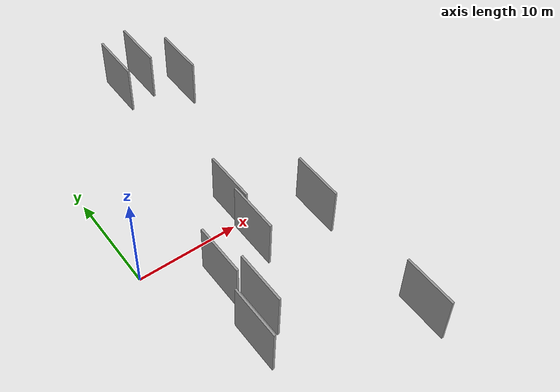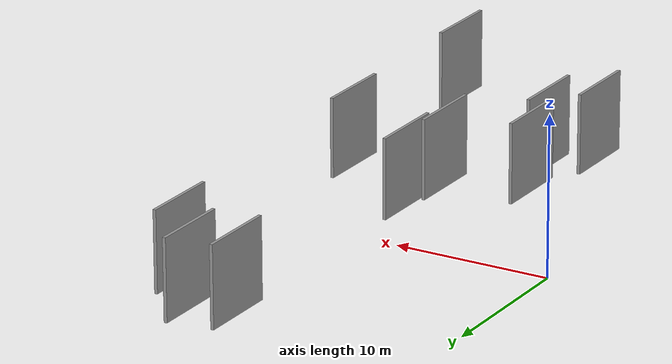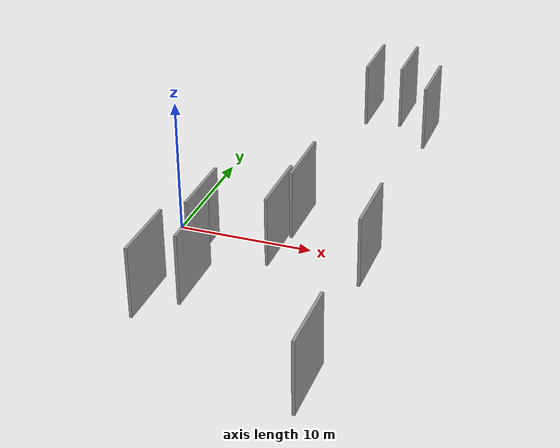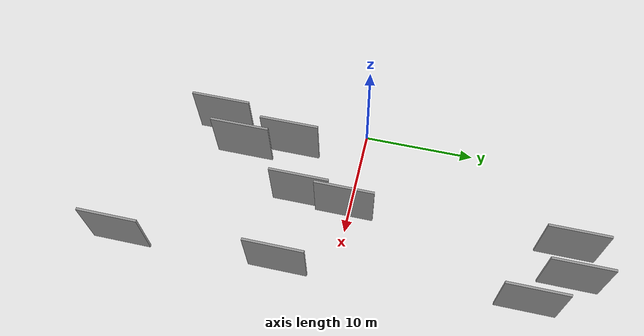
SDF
<sdf version="1.6">
 <world name="default">
  <scene>
   <sky><clouds><speed>12</speed></clouds></sky>
   <ambient>0.4 0.4 0.4 1</ambient>
   <background>0.7 0.7 0.7 1</background>
   <shadows>1</shadows>
  </scene>
  <gravity>0 0 -9.8066</gravity>
  <magnetic_field>6e-06 2.3e-05 -4.2e-05</magnetic_field>
  <physics default="0" name="default_physics" type="ode">
   <ode>
    <solver>
     <type>quick</type>
     <iters>10</iters>
     <sor>1.0</sor>
     <use_dynamic_moi_rescaling>0</use_dynamic_moi_rescaling>
    </solver>
    <constraints>
     <cfm>0</cfm>
     <erp>0.2</erp>
     <contact_max_correcting_vel>100</contact_max_correcting_vel>
     <contact_surface_layer>0.001</contact_surface_layer>
    </constraints>
   </ode>
   <max_step_size>0.004</max_step_size>
   <real_time_factor>1</real_time_factor>
   <real_time_update_rate>250</real_time_update_rate>
  </physics>
  <light name="sun" type="directional">
   <pose>0 0 10 0 0 0</pose>
   <diffuse>0.8 0.8 0.8 1</diffuse>
   <specular>0.2 0.2 0.2 1</specular>
   <attenuation>
    <range>1000</range>
    <constant>0.9</constant>
    <linear>0.01</linear>
    <quadratic>0.001</quadratic>
   </attenuation>
   <direction>-0.5 0.1 -0.9</direction>
  </light>
  <model name="grey_wall_1">
   <static>1</static>
   <pose>14.6892 15.8349 2.5 0.000000 0.000000 1.570796</pose>
   <link name="link">
    <pose>0 0 2.50 0 0 0</pose>
    <collision name="collision"><geometry><box><size>5.00 0.2 5.00</size></box></geometry></collision>
    <visual name="visual">
     <cast_shadows>0</cast_shadows>
     <geometry><box><size>5.00 0.2 5.00</size></box></geometry>
     <material>
      <script>
       <uri>model://grey_wall/materials/scripts</uri>
       <uri>model://grey_wall/materials/textures</uri>
       <name>vrc/grey_wall</name>
      </script>
     </material>
    </visual>
   </link>
  </model>
  <model name="grey_wall_2">
   <static>1</static>
   <pose>9.1264 -4.0138 2.5 0.000000 0.000000 1.570796</pose>
   <link name="link">
    <pose>0 0 2.50 0 0 0</pose>
    <collision name="collision"><geometry><box><size>5.00 0.2 5.00</size></box></geometry></collision>
    <visual name="visual">
     <cast_shadows>0</cast_shadows>
     <geometry><box><size>5.00 0.2 5.00</size></box></geometry>
     <material>
      <script>
       <uri>model://grey_wall/materials/scripts</uri>
       <uri>model://grey_wall/materials/textures</uri>
       <name>vrc/grey_wall</name>
      </script>
     </material>
    </visual>
   </link>
  </model>
  <model name="grey_wall_3">
   <static>1</static>
   <pose>9.2573 18.5756 2.5 0.000000 0.000000 1.570796</pose>
   <link name="link">
    <pose>0 0 2.50 0 0 0</pose>
    <collision name="collision"><geometry><box><size>5.00 0.2 5.00</size></box></geometry></collision>
    <visual name="visual">
     <cast_shadows>0</cast_shadows>
     <geometry><box><size>5.00 0.2 5.00</size></box></geometry>
     <material>
      <script>
       <uri>model://grey_wall/materials/scripts</uri>
       <uri>model://grey_wall/materials/textures</uri>
       <name>vrc/grey_wall</name>
      </script>
     </material>
    </visual>
   </link>
  </model>
  <model name="grey_wall_4">
   <static>1</static>
   <pose>9.4729 -0.1603 2.5 0.000000 0.000000 1.570796</pose>
   <link name="link">
    <pose>0 0 2.50 0 0 0</pose>
    <collision name="collision"><geometry><box><size>5.00 0.2 5.00</size></box></geometry></collision>
    <visual name="visual">
     <cast_shadows>0</cast_shadows>
     <geometry><box><size>5.00 0.2 5.00</size></box></geometry>
     <material>
      <script>
       <uri>model://grey_wall/materials/scripts</uri>
       <uri>model://grey_wall/materials/textures</uri>
       <name>vrc/grey_wall</name>
      </script>
     </material>
    </visual>
   </link>
  </model>
  <model name="grey_wall_5">
   <static>1</static>
   <pose>3.3016 -12.3086 2.5 0.000000 0.000000 1.570796</pose>
   <link name="link">
    <pose>0 0 2.50 0 0 0</pose>
    <collision name="collision"><geometry><box><size>5.00 0.2 5.00</size></box></geometry></collision>
    <visual name="visual">
     <cast_shadows>0</cast_shadows>
     <geometry><box><size>5.00 0.2 5.00</size></box></geometry>
     <material>
      <script>
       <uri>model://grey_wall/materials/scripts</uri>
       <uri>model://grey_wall/materials/textures</uri>
       <name>vrc/grey_wall</name>
      </script>
     </material>
    </visual>
   </link>
  </model>
  <model name="grey_wall_6">
   <static>1</static>
   <pose>15.5739 -4.4283 2.5 0.000000 0.000000 1.570796</pose>
   <link name="link">
    <pose>0 0 2.50 0 0 0</pose>
    <collision name="collision"><geometry><box><size>5.00 0.2 5.00</size></box></geometry></collision>
    <visual name="visual">
     <cast_shadows>0</cast_shadows>
     <geometry><box><size>5.00 0.2 5.00</size></box></geometry>
     <material>
      <script>
       <uri>model://grey_wall/materials/scripts</uri>
       <uri>model://grey_wall/materials/textures</uri>
       <name>vrc/grey_wall</name>
      </script>
     </material>
    </visual>
   </link>
  </model>
  <model name="grey_wall_7">
   <static>1</static>
   <pose>4.4286 -6.0121 2.5 0.000000 0.000000 1.570796</pose>
   <link name="link">
    <pose>0 0 2.50 0 0 0</pose>
    <collision name="collision"><geometry><box><size>5.00 0.2 5.00</size></box></geometry></collision>
    <visual name="visual">
     <cast_shadows>0</cast_shadows>
     <geometry><box><size>5.00 0.2 5.00</size></box></geometry>
     <material>
      <script>
       <uri>model://grey_wall/materials/scripts</uri>
       <uri>model://grey_wall/materials/textures</uri>
       <name>vrc/grey_wall</name>
      </script>
     </material>
    </visual>
   </link>
  </model>
  <model name="grey_wall_8">
   <static>1</static>
   <pose>5.4996 -10.0364 2.5 0.000000 0.000000 1.570796</pose>
   <link name="link">
    <pose>0 0 2.50 0 0 0</pose>
    <collision name="collision"><geometry><box><size>5.00 0.2 5.00</size></box></geometry></collision>
    <visual name="visual">
     <cast_shadows>0</cast_shadows>
     <geometry><box><size>5.00 0.2 5.00</size></box></geometry>
     <material>
      <script>
       <uri>model://grey_wall/materials/scripts</uri>
       <uri>model://grey_wall/materials/textures</uri>
       <name>vrc/grey_wall</name>
      </script>
     </material>
    </visual>
   </link>
  </model>
  <model name="grey_wall_9">
   <static>1</static>
   <pose>11.9738 19.0302 2.5 0.000000 0.000000 1.570796</pose>
   <link name="link">
    <pose>0 0 2.50 0 0 0</pose>
    <collision name="collision"><geometry><box><size>5.00 0.2 5.00</size></box></geometry></collision>
    <visual name="visual">
     <cast_shadows>0</cast_shadows>
     <geometry><box><size>5.00 0.2 5.00</size></box></geometry>
     <material>
      <script>
       <uri>model://grey_wall/materials/scripts</uri>
       <uri>model://grey_wall/materials/textures</uri>
       <name>vrc/grey_wall</name>
      </script>
     </material>
    </visual>
   </link>
  </model>
  <model name="grey_wall_10">
   <static>1</static>
   <pose>15.8893 -17.8477 2.5 0.000000 0.000000 1.570796</pose>
   <link name="link">
    <pose>0 0 2.50 0 0 0</pose>
    <collision name="collision"><geometry><box><size>5.00 0.2 5.00</size></box></geometry></collision>
    <visual name="visual">
     <cast_shadows>0</cast_shadows>
     <geometry><box><size>5.00 0.2 5.00</size></box></geometry>
     <material>
      <script>
       <uri>model://grey_wall/materials/scripts</uri>
       <uri>model://grey_wall/materials/textures</uri>
       <name>vrc/grey_wall</name>
      </script>
     </material>
    </visual>
   </link>
  </model>
 </world>
</sdf>
